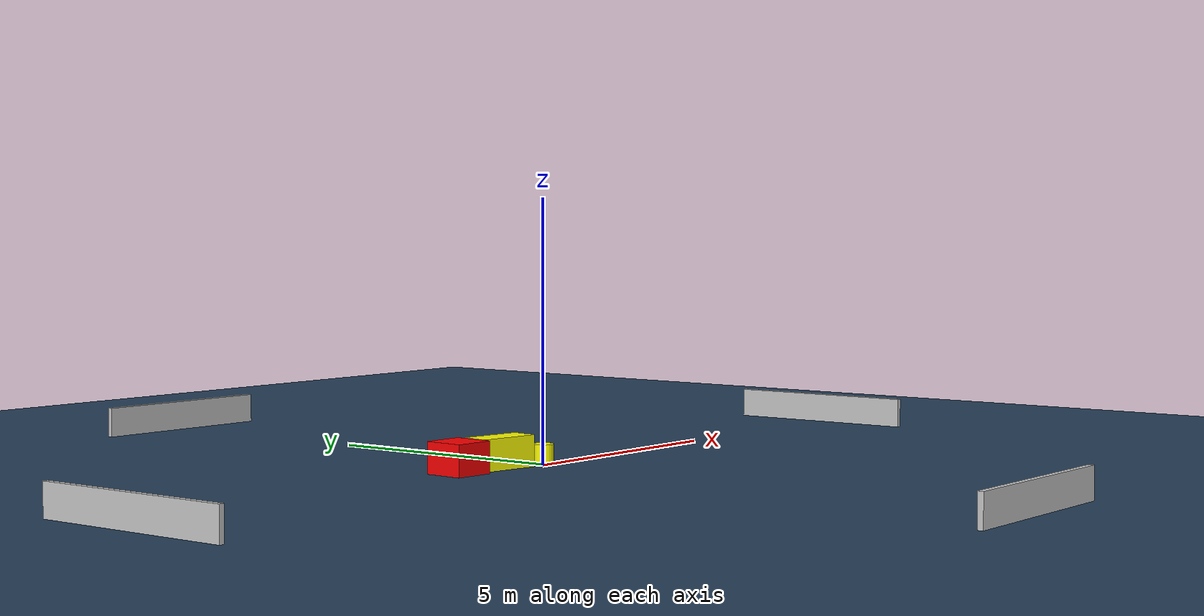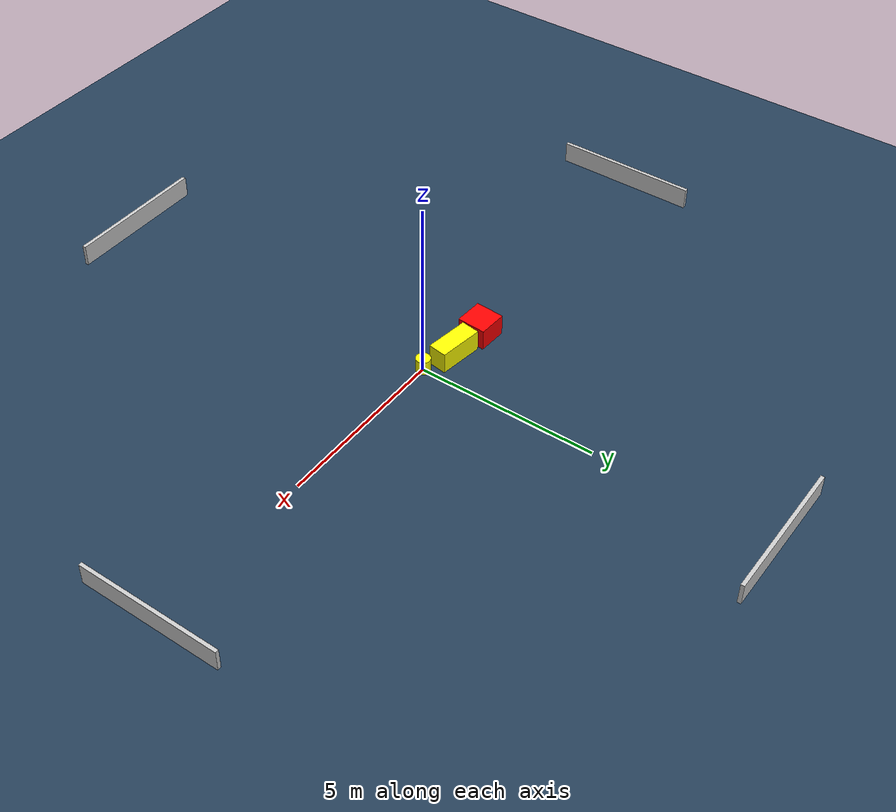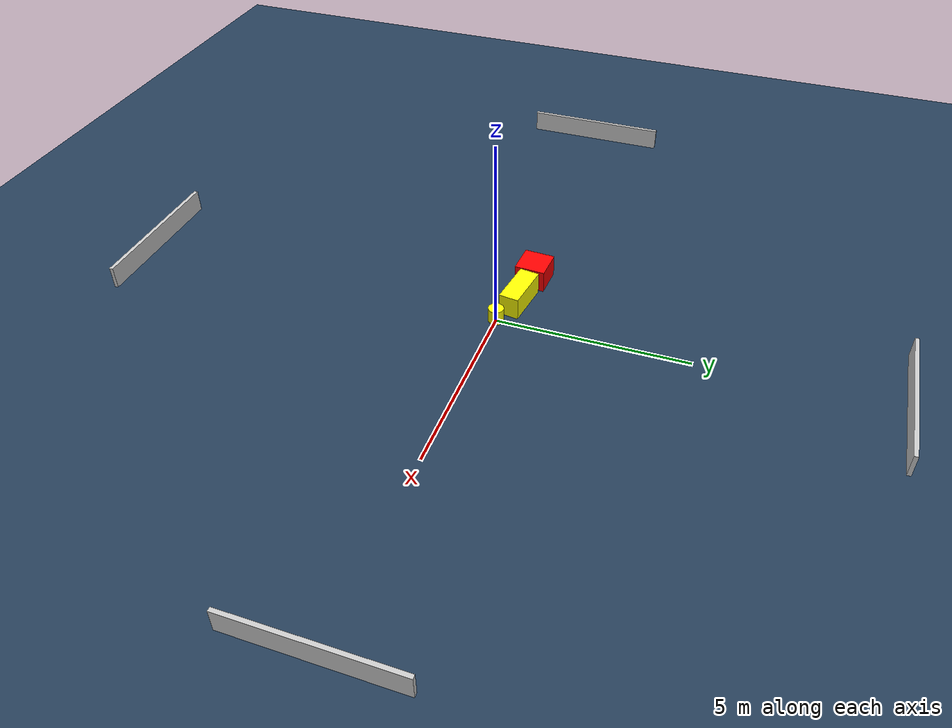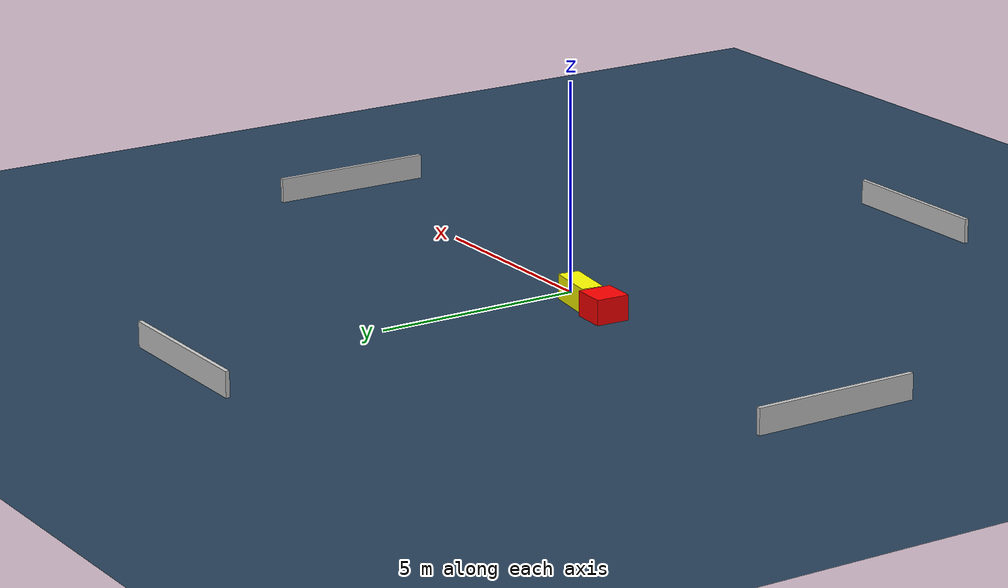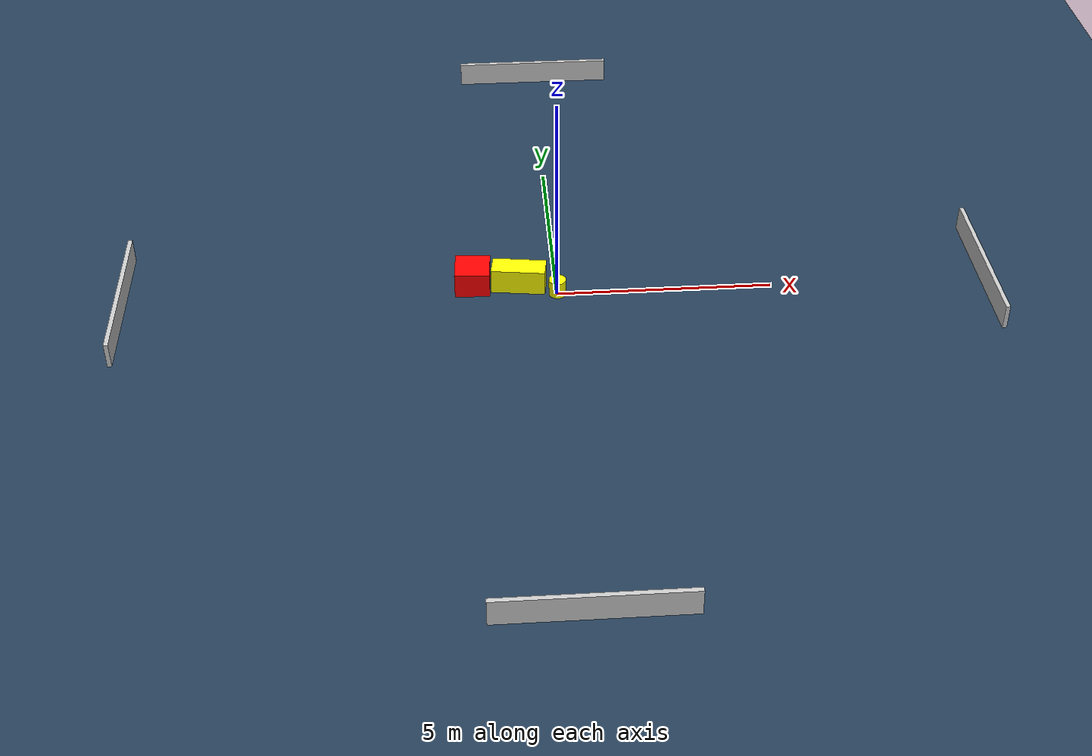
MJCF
<?xml version="1.0" ?>
<mujoco model="generated_environment">
  <option timestep="0.01" integrator="RK4" cone="elliptic"/>
  <default>
    <geom density="1"/>
  </default>
  <asset>
    <texture builtin="gradient" height="3072" name="skybox" rgb1="0.3 0.5 0.7" rgb2="0 0 0" type="skybox" width="512"/>
    <texture builtin="checker" height="300" name="groundplane" rgb1="0.2 0.3 0.4" rgb2="0.1 0.2 0.3" type="2d" width="300"/>
    <material name="groundplane" reflectance="0.2" texrepeat="5 5" texture="groundplane"/>
  </asset>
  <worldbody>
    <light dir="0 0 -1" directional="true" pos="0 0 1.5"/>
    <geom condim="3" friction="0.5 0.005 0.001" material="groundplane" name="floor" pos="0 0 0" size="0 0 0.05" type="plane"/>
    <body name="walls">
      <geom name="wall_1" condim="4" pos="-10.0 0.0 0.3" rgba="0.800000011920929 0.800000011920929 0.800000011920929 1.0" size="0.05 2.0 0.3" type="box"/>
      <geom name="wall_2" condim="4" pos="10.0 0.0 0.3" rgba="0.800000011920929 0.800000011920929 0.800000011920929 1.0" size="0.05 2.0 0.3" type="box"/>
      <geom name="wall_3" condim="4" pos="0.0 -10.0 0.3" rgba="0.800000011920929 0.800000011920929 0.800000011920929 1.0" size="2.0 0.05 0.3" type="box"/>
      <geom name="wall_4" condim="4" pos="0.0 10.0 0.3" rgba="0.800000011920929 0.800000011920929 0.800000011920929 1.0" size="2.0 0.05 0.3" type="box"/>
    </body>
    <body name="robot">
      <joint name="joint_x" type="slide" pos="0 0 0" axis="1 0 0"/>
      <joint name="joint_y" type="slide" pos="0 0 0" axis="0 1 0"/>
      <geom name="robot" type="cylinder" pos="0.0 0.0 0.2" size="0.2 0.2 0.0" mass="5.0" friction="1.0 0.005 0.0001" condim="4" rgba="1.0 1.0 0.0 1.0"/>
    </body>
    <body name="obstacle_1_movable">
      <geom name="obstacle_1_movable" condim="4" pos="-0.877519930559697 0.32810538868132627 0.3" euler="0 0 82.09291954548115" friction="0.0 0.005 0.001" rgba="1.0 1.0 0.0 1.0" size="0.2617923170624124 0.6258629635547498 0.3" type="box" mass="0.1"/>
      <joint type="free"/>
    </body>
    <body name="obstacle_2_static">
      <geom name="obstacle_2_static" condim="4" pos="-1.9520111396803155 0.4098606390618684 0.3" euler="0 0 176.9386426481413" friction="0.0 0.005 0.001" rgba="1.0 0.0 0.0 1.0" size="0.40448000198708833 0.402883392695821 0.3" type="box"/>
    </body>
  </worldbody>
  <actuator>
    <motor name="actuator_x" joint="joint_x" gear="1" ctrlrange="-1 1"/>
    <motor name="actuator_y" joint="joint_y" gear="1" ctrlrange="-1 1"/>
  </actuator>
</mujoco>
